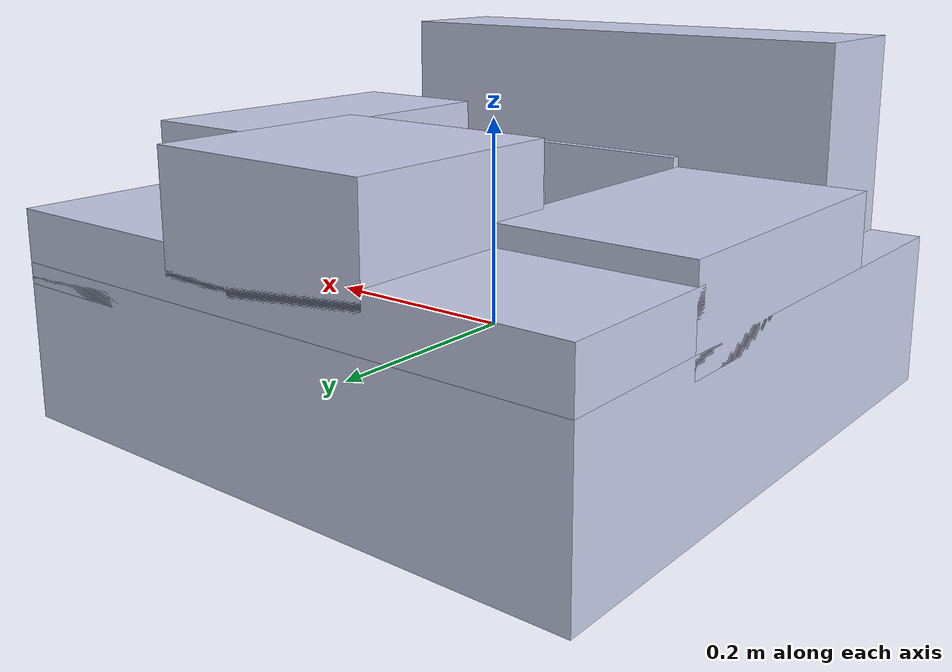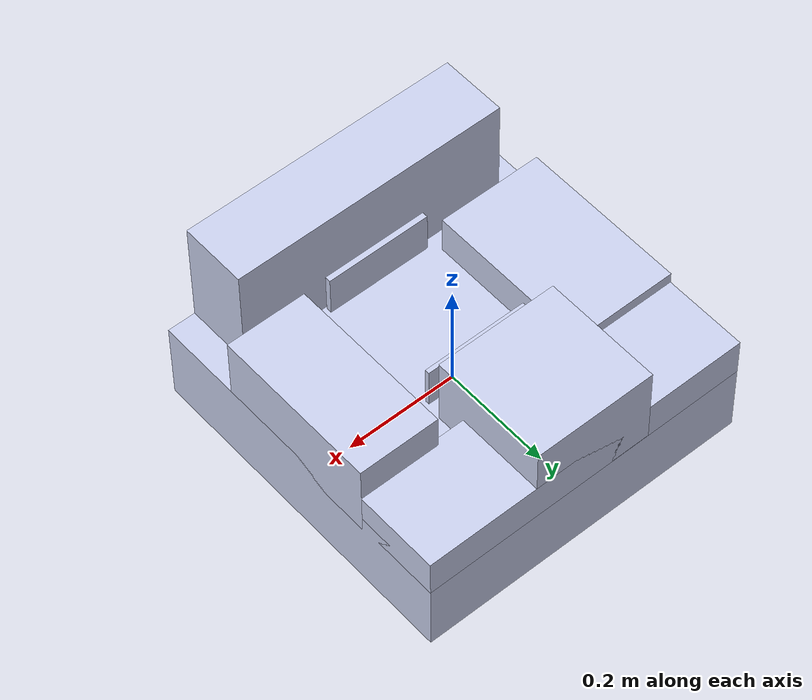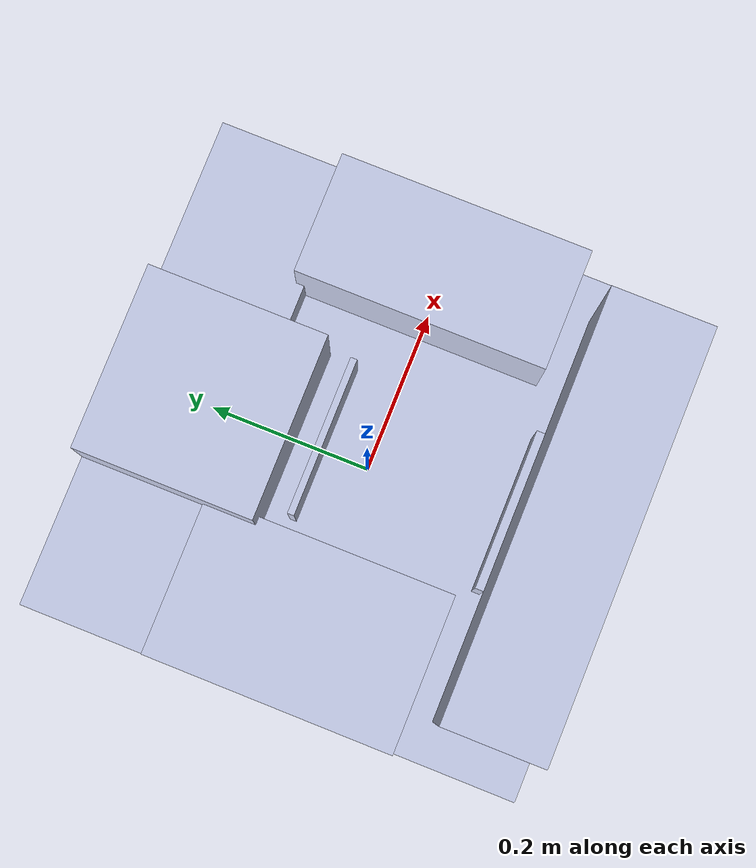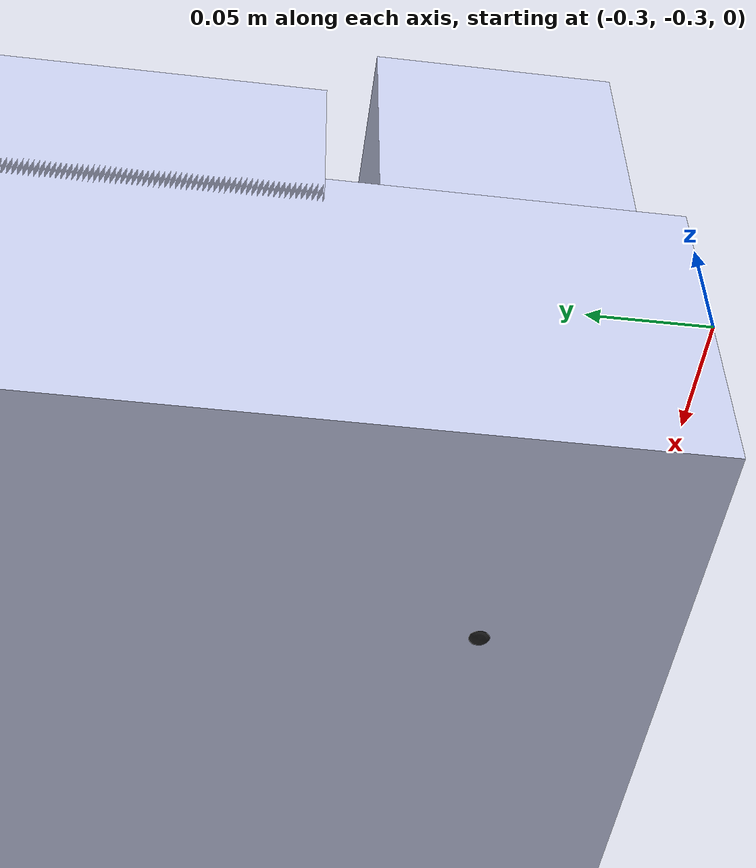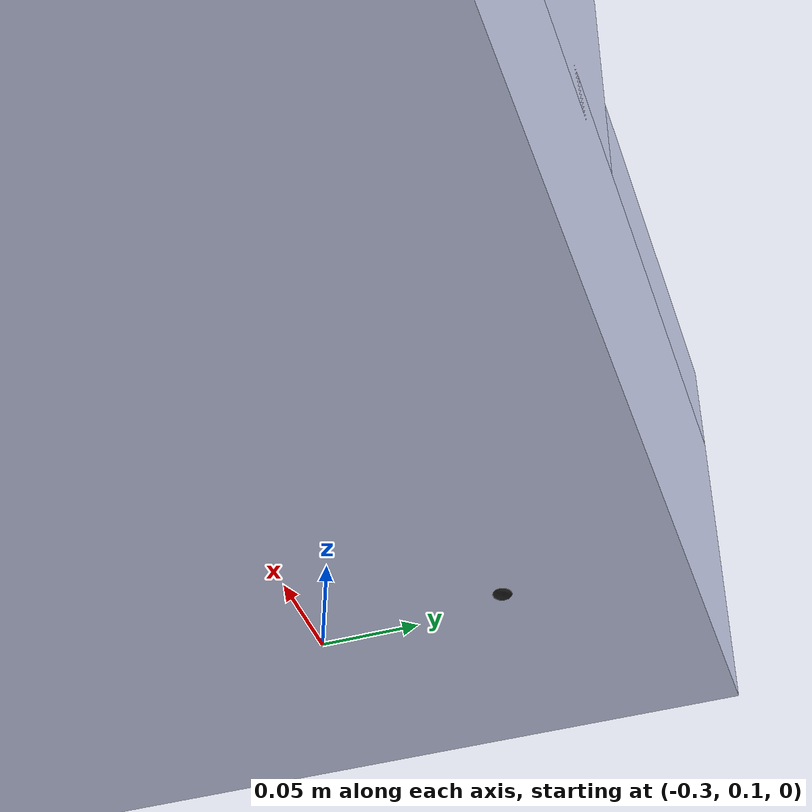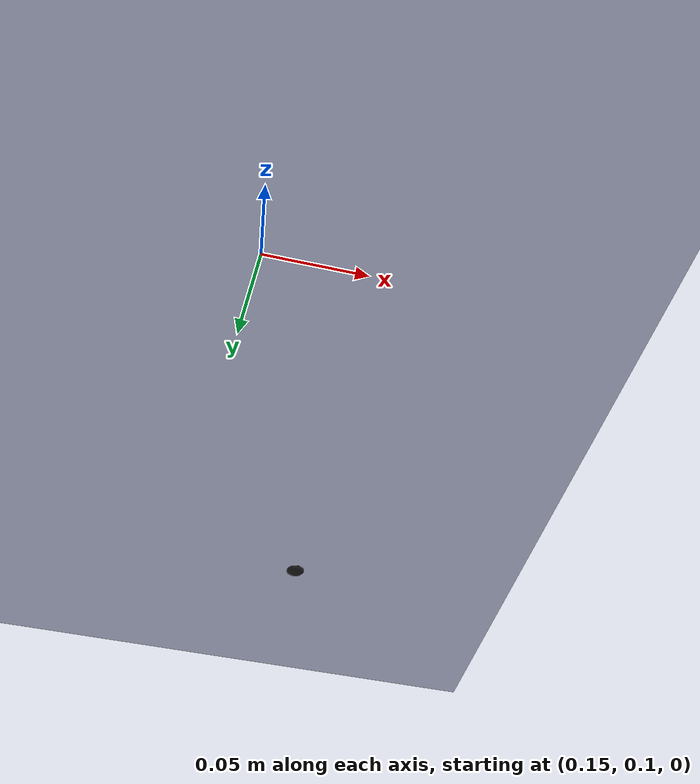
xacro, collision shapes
<?xml version="1.0"?>
<robot xmlns:xacro="http://www.ros.org/wiki/xacro" name="engineer">
	<xacro:include filename="$(find sp2_description)/urdf/engineer/engineer_chassis/engineer_chassis.xacro"/>
	<xacro:include filename="$(find sp2_description)/urdf/engineer/engineer.ros2_control.xacro"/>

	<xacro:arg name="use_simulation" default="true"/>
	<xacro:engineer_chassis roller_type="simple"/>
	<xacro:engineer_ros2_control name="engineer"/>

<!-- ............................. IMU ........................................ -->
	<link name="imu_frame"/>

	<joint name="imu_joint" type="fixed">
      <parent link="base_link"/>
      <child link="imu_frame"/>
      <origin xyz="0.0 0.0 0.0" rpy="0.0 0.0 0.0"/>
	</joint>
	<gazebo reference="imu_frame">
      <sensor name="imu_sensor" type="imu">
        <always_on>1</always_on>
        <update_rate>100</update_rate>
        <ignition_frame_id>imu_frame</ignition_frame_id>
        <visualize>true</visualize>
        <topic>imu</topic>
      </sensor>
	</gazebo>
<!-- ............................. IMU ........................................ -->
  	<gazebo>
    	  <!-- IMU plugin -->
	  <plugin filename="ignition-gazebo-imu-system"
        name="ignition::gazebo::systems::Imu">
      </plugin>
    	  <!-- Joint state publisher -->
   	  <plugin filename="ign_ros2_control-system" name="ign_ros2_control::IgnitionROS2ControlPlugin">
        <parameters>$(find sp2_description)/config/engineer_controllers.yaml</parameters>
      </plugin>
  	</gazebo>

</robot>

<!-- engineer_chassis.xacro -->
<robot name="engineer_chassis" xmlns:xacro="http://www.ros.org/wiki/xacro">

  <xacro:include filename="$(find sp2_description)/urdf/common/mecanum_wheel.xacro"/>

  <xacro:property name="wheel_front" value="0.19727"/>
  <xacro:property name="wheel_back" value="-0.19727"/>
  <xacro:property name="wheel_left" value="0.22300"/>
  <xacro:property name="wheel_right" value="-0.22300"/>
  <xacro:property name="wheel_offset_z" value="0.000889"/>
  <xacro:property name="wheel_joint_damping" value="1.0"/>
  <xacro:property name="wheel_joint_friction" value="1.0"/>

  <xacro:macro name="engineer_chassis" params="roller_type">
<!--base link-->
   <link
    name="base_link">
    <inertial>
      <origin
        xyz="0.0147695790883097 -0.0277071473448106 0.0578144581314767"
        rpy="0 0 0" />
      <mass
        value="10.0515226503987" />
      <inertia
        ixx="0.0193511082538768"
        ixy="-3.41760973575497E-05"
        ixz="5.54217286706699E-06"
        iyy="0.0356235596590244"
        iyz="-8.92016001448171E-06"
        izz="0.046454065978897" />
    </inertial>
    <visual>
      <origin
        xyz="0 0 0"
        rpy="0 0 0" />
      <geometry>
        <mesh
          filename="package://sp2_description/meshes/engineer_chassis/base_link.STL" />
      </geometry>
      <material
        name="">
        <color
          rgba="0.792156862745098 0.819607843137255 0.933333333333333 1" />
      </material>
    </visual>
    <collision>
      <origin xyz="0 0 0" rpy="0 0 0" />
      <geometry>
        <box size="0.6 0.6 0.150"/>
      </geometry>
    </collision>
    <collision>
      <origin xyz="0.228 0.0 0.118" rpy="0 0 0"/>
      <geometry>
        <box size="0.144 0.3 0.14"/>
      </geometry>
    </collision>
    <collision>
      <origin xyz="-0.205 0.0 0.10" rpy="0 0 0"/>
      <geometry>
        <box size="0.19 0.3 0.09"/>
      </geometry>
    </collision>
    <collision>
      <origin xyz="-0.01 0.193 0.13" rpy="0 0 0"/>
      <geometry>
        <box size="0.220 0.214 0.148"/>
      </geometry>
    </collision>
    <collision>
      <origin xyz="0.0 0.22 0.09" rpy="0 0 0"/>
      <geometry>
        <box size="0.6 0.16 0.07"/>
      </geometry>
    </collision>
    <collision>
      <origin xyz="0.0 -0.24 0.13" rpy="0 0 0"/>
      <geometry>
        <box size="0.5 0.12 0.28"/>
      </geometry>
    </collision>
    <collision>
      <origin xyz="0.0 0.054 0.10" rpy="0 0 0"/>
      <geometry>
        <box size="0.19 0.008 0.10" rpy="0 0 0"/>
      </geometry>
    </collision>
    <collision>
      <origin xyz="0.0 -0.172 0.10" rpy="0 0 0"/>
      <geometry>
        <box size="0.19 0.01 0.10"/>
      </geometry>
    </collision>
  </link>
    <xacro:mecanum_wheel prefix="left_front" connected_to="base_link"
                         wheel_x_offset="${wheel_front}" wheel_y_offset="${wheel_left}"
                         wheel_z_offset="${wheel_offset_z}"
                         reflect="1" roller_type="${roller_type}"/>
    <xacro:mecanum_wheel prefix="right_front" connected_to="base_link"
                         wheel_x_offset="${wheel_front}" wheel_y_offset="${wheel_right}"
                         wheel_z_offset="${wheel_offset_z}"
                         reflect="-1" roller_type="${roller_type}"/>
    <xacro:mecanum_wheel prefix="left_rear" connected_to="base_link"
                         wheel_x_offset="${wheel_back}" wheel_y_offset="${wheel_left}"
                         wheel_z_offset="${wheel_offset_z}"
                         reflect="-1" roller_type="${roller_type}"/>
    <xacro:mecanum_wheel prefix="right_rear" connected_to="base_link"
                         wheel_x_offset="${wheel_back}" wheel_y_offset="${wheel_right}"
                         wheel_z_offset="${wheel_offset_z}"
                         reflect="1" roller_type="${roller_type}"/>
  </xacro:macro>

<!--grappler link-->
</robot>

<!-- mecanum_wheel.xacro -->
<robot xmlns:xacro="http://www.ros.org/wiki/xacro" name="mecanum_wheel">

    <xacro:property name="wheel_radius" value="0.077"/>
    <xacro:property name="roller_radius" value="0.009"/>
    <xacro:property name="wheel_joint_effort" value="10"/>
    <xacro:property name="wheel_joint_velocity" value="70"/>

    <xacro:macro name="roller" params="prefix suffix theta roller_type">
        <!-- rotation math: roller_joint_axis -->
        <xacro:property name="sqrt_2_2" value="${sqrt(2)/2}"/>
        <xacro:property name="roller_joint_axis_x" value="${cos(theta) * sqrt_2_2}"/>
        <xacro:property name="roller_joint_axis_y" value="${-reflect * sqrt_2_2}"/>
        <xacro:property name="roller_joint_axis_z" value="${sin(theta) * sqrt_2_2}"/>
        <!-- rotation math: get quaternion between x_axis (1,0,0) and roller_joint_axis
        https://stackoverflow.com/questions/1171849/finding-quaternion-representing-the-rotation-from-one-vector-to-another -->
        <xacro:property name="quat_x" value="${0}"/>
        <xacro:property name="quat_y" value="${roller_joint_axis_z}"/>
        <xacro:property name="quat_z" value="${-roller_joint_axis_y}"/>
        <xacro:property name="quat_w" value="${-(1+roller_joint_axis_x)}"/>
        <xacro:property name="quat_length" value="${sqrt(quat_y*quat_y + quat_z * quat_z+quat_w * quat_w)}"/>
        <xacro:property name="quat_normal_x" value="${0}"/>
        <xacro:property name="quat_normal_y" value="${quat_y/quat_length}"/>
        <xacro:property name="quat_normal_z" value="${quat_z/quat_length}"/>
        <xacro:property name="quat_normal_w" value="${quat_w/quat_length}"/>

        <!--  link  -->
        <link name="${prefix}_roller_${suffix}">
            <collision>
                <xacro:if value="${roller_type=='realistic'}">
                    <!--  quat_xyzw dosen't work ?! covert to rpy-->
                    <origin rpy="${atan2(2. * (quat_normal_w * quat_normal_x + quat_normal_y * quat_normal_z),
                              1. - 2. * (quat_normal_x * quat_normal_x + quat_normal_y * quat_normal_y))}
                     ${asin(2. * (quat_normal_w * quat_normal_y - quat_normal_z * quat_normal_x))}
                     ${atan2(2. * (quat_normal_w * quat_normal_z + quat_normal_x * quat_normal_y),
                              1. - 2. * (quat_normal_y * quat_normal_y + quat_normal_z * quat_normal_z))}"
                            xyz="0 0 0"/>
                    <geometry>
                        <mesh filename="package://sp2_description/meshes/common/mecanum_wheel/roller.STL" />
                    </geometry>
                </xacro:if>
                <xacro:if value="${roller_type=='simple'}">
                    <geometry>
                        <sphere radius="${roller_radius}"/>
                    </geometry>
                    <material name="">
                        <color rgba="0.792156862745098 0.819607843137255 0.933333333333333 1" />
                    </material>
                </xacro:if>
            </collision>
            <inertial>
                <mass value="0.036"/>
                <inertia ixx="3128e-9" ixy="0.0" ixz="0.0" iyy="3128e-9" iyz="0.0" izz="3128e-9"/>
            </inertial>
        </link>

        <joint name="${prefix}_roller_${suffix}_joint" type="continuous">
            <origin
                    xyz="${(wheel_radius-roller_radius)*cos(theta-pi/2)} 0 ${(wheel_radius-roller_radius)*sin(theta-pi/2)}"
                    rpy="0 0 0"/>
            <axis xyz="${roller_joint_axis_x} ${roller_joint_axis_y} ${roller_joint_axis_z}"/>
            <dynamics damping="0.0" friction="0.001"/>
            <parent link="${prefix}_wheel"/>
            <child link="${prefix}_roller_${suffix}"/>
        </joint>

        <gazebo reference="${prefix}_roller_${suffix}">
            <mu1 value="2000.0"/>
            <mu2 value="2000.0"/>
            <kp value="1000000.0"/>
            <kd value="100.0"/>
            <material>Gazebo/Black</material>
        </gazebo>

    </xacro:macro>

    <xacro:macro name="mecanum_wheel"
                 params="prefix connected_to wheel_x_offset wheel_y_offset wheel_z_offset reflect roller_type">
        <!--  link  -->
        <link name="${prefix}_wheel">
            <visual>
                <geometry>
                    <xacro:if value="${reflect == 1}">
                        <mesh filename="package://sp2_description/meshes/common/mecanum_wheel/right_mecanum_wheel.STL"/>
                    </xacro:if>
                    <xacro:if value="${reflect == -1}">
                        <mesh filename="package://sp2_description/meshes/common/mecanum_wheel/left_mecanum_wheel.STL"/>
                    </xacro:if>
                </geometry>
                <material name="">
                    <color rgba="0.792156862745098 0.819607843137255 0.933333333333333 1" />
                </material>
            </visual>
            <inertial>
                <mass value="0.4235"/>
                <inertia ixx="4.122e-4" ixy="0.0" ixz="0.0" iyy="7.398e-4" iyz="0.0" izz="4.122e-4"/>
            </inertial>
        </link>

        <!--  joint  -->
        <joint name="${prefix}_wheel_joint" type="revolute">
            <axis xyz="0 1 0"/>
            <origin xyz="${wheel_x_offset} ${wheel_y_offset} ${wheel_offset_z}" rpy="0 0 0"/>
            <!--      limit not work while type="continuous"-->
            <limit effort="${wheel_joint_effort}" velocity="${wheel_joint_velocity}" lower="-1e9" upper="1e9"/>
            <dynamics damping="0.0" friction="0.05"/>
            <parent link="${connected_to}"/>
            <child link="${prefix}_wheel"/>
        </joint>

        <xacro:unless value="${roller_type=='none'}">
            <!-- 16 roller  2pi/16=0.393-->
            <xacro:roller prefix="${prefix}" suffix="0" theta="${0*0.393}" roller_type="${roller_type}"/>
            <xacro:roller prefix="${prefix}" suffix="1" theta="${1*0.393}" roller_type="${roller_type}"/>
            <xacro:roller prefix="${prefix}" suffix="2" theta="${2*0.393}" roller_type="${roller_type}"/>
            <xacro:roller prefix="${prefix}" suffix="3" theta="${3*0.393}" roller_type="${roller_type}"/>
            <xacro:roller prefix="${prefix}" suffix="4" theta="${4*0.393}" roller_type="${roller_type}"/>
            <xacro:roller prefix="${prefix}" suffix="5" theta="${5*0.393}" roller_type="${roller_type}"/>
            <xacro:roller prefix="${prefix}" suffix="6" theta="${6*0.393}" roller_type="${roller_type}"/>
            <xacro:roller prefix="${prefix}" suffix="7" theta="${7*0.393}" roller_type="${roller_type}"/>
            <xacro:roller prefix="${prefix}" suffix="8" theta="${8*0.393}" roller_type="${roller_type}"/>
            <xacro:roller prefix="${prefix}" suffix="9" theta="${9*0.393}" roller_type="${roller_type}"/>
            <xacro:roller prefix="${prefix}" suffix="10" theta="${10*0.393}" roller_type="${roller_type}"/>
            <xacro:roller prefix="${prefix}" suffix="11" theta="${11*0.393}" roller_type="${roller_type}"/>
            <xacro:roller prefix="${prefix}" suffix="12" theta="${12*0.393}" roller_type="${roller_type}"/>
            <xacro:roller prefix="${prefix}" suffix="13" theta="${13*0.393}" roller_type="${roller_type}"/>
            <xacro:roller prefix="${prefix}" suffix="14" theta="${14*0.393}" roller_type="${roller_type}"/>
            <xacro:roller prefix="${prefix}" suffix="15" theta="${15*0.393}" roller_type="${roller_type}"/>
        </xacro:unless>

    </xacro:macro>

    <xacro:macro name="ros1_wheel_transmission" params="prefix mechanical_reduction">
        <transmission name="${prefix}_wheel_trans">
            <type>transmission_interface/SimpleTransmission</type>
            <actuator name="${prefix}_wheel_motor">
                <hardwareInterface>hardware_interface/EffortJointInterface</hardwareInterface>
                <mechanicalReduction>${mechanical_reduction}</mechanicalReduction>
            </actuator>
            <joint name="${prefix}_wheel_joint">
                <hardwareInterface>hardware_interface/EffortJointInterface</hardwareInterface>
            </joint>
        </transmission>
    </xacro:macro>

    <xacro:macro name="ros2_wheel_transmission" params="prefix mechanical_reduction">
        <transmission name="${prefix}_wheel_trans">
            <plugin>transmission_interface/SimpleTransmission</plugin>
            <joint name="${prefix}_wheel_joint" role="${prefix}_wheel_joint">
                <mechanical_reduction>${mechanical_reduction}</mechanical_reduction>
                <offset>0.0</offset>
            </joint>
        </transmission>
    </xacro:macro>
</robot>
